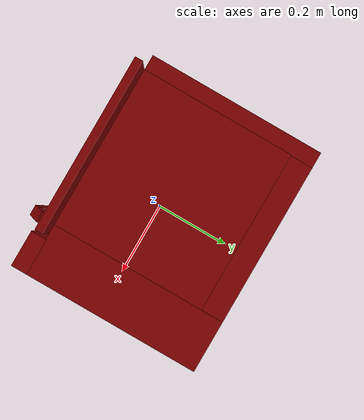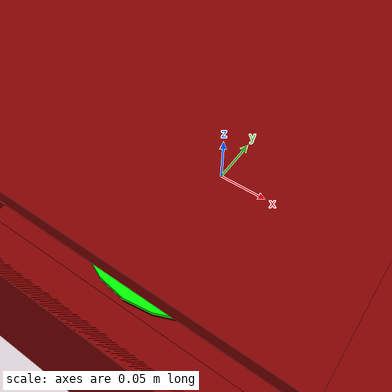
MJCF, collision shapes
<?xml version='1.0' encoding='UTF-8'?>
<mujoco model="model">
  <option timestep="0.002" gravity="0.0 0.0 -9.81"/>
  <compiler angle="radian"/>
  <asset>
    <mesh file="visuals/door.obj" name="door_vis"/>
    <mesh file="visuals/door_Clear.obj" name="door_Clear_vis"/>
    <mesh file="visuals/Body001.obj" name="Body001_vis"/>
    <mesh file="visuals/Disc001.obj" name="Disc001_vis"/>
    <texture file="visuals/T_BC001.png" name="Body001_material" type="2d"/>
    <material name="Body001_material" rgba="1 1 1 1.0" texture="Body001_material" shininess="0.4472135901451111" specular="0.5"/>
    <texture file="visuals/T_BC001.png" name="door_material" type="2d"/>
    <material name="door_material" rgba="1 1 1 1.0" texture="door_material" shininess="0.4472135901451111" specular="0.5"/>
    <material name="door_Clear_material" rgba="0.016620054841041565 0.016620054841041565 0.016620054841041565 0.8999999761581421" shininess="0.5" specular="0.3103448502657381"/>
    <texture file="visuals/T_BC001.png" name="Disc001_material" type="2d"/>
    <material name="Disc001_material" rgba="1 1 1 1.0" texture="Disc001_material" shininess="0.4472135901451111" specular="0.3103448502657381"/>
  </asset>
  <default>
    <default class="visual">
      <geom conaffinity="0" contype="0" group="1" type="mesh"/>
    </default>
    <default class="collision">
      <geom group="0" rgba="0.5 0 0 0.5"/>
    </default>
    <default class="spawn">
      <geom group="0" rgba="1 1 1 0.5" contype="0" conaffinity="0"/>
      <site group="0" rgba="1 1 1 0.5"/>
    </default>
    <default class="region">
      <geom group="1" conaffinity="0" contype="0" rgba="0 1 0 0"/>
    </default>
  </default>
  <worldbody>
    <body>
      <body name="object">
        <geom class="collision" type="box" pos="0.27996048 -0.23649887 -0.10212125" size="0.012545344419777393 0.0007347729406319559 0.00881138350814581" quat="1.0 0.0 0.0 0.0" name="stop_button" rgba="0.0 0.5 0 0.5"/>
        <geom class="collision" type="box" pos="0.22650762 -0.23649887 -0.10212125" size="0.012719687074422836 0.0007347734645009041 0.008811390027403831" quat="1.0 0.0 0.0 0.0" name="start_button" rgba="0.0 0.5 0 0.5"/>
        <geom class="collision" type="cylinder" pos="-0.04535701 0.02121897 -0.12542872" size="0.14345215260982513 0.003064013086259365" quat="1.0 0.0 0.0 0.0" name="tray" rgba="0 1 0 0.5"/>
        <geom mesh="Body001_vis" type="mesh" solimp="0.998 0.998 0.001" solref="0.001 1" friction="0.95 0.3 0.1" class="visual" material="Body001_material"/>
        <geom class="collision" type="box" pos="-0.27882862 0.03831745 0.00594076" size="0.020639784634113312 0.23016217350959778 0.15897443890571594" quat="1.0 0.0 0.0 0.0"/>
        <geom class="collision" type="box" pos="0.23153952 0.03831742 0.00594076" size="0.06792837381362915 0.2301621437072754 0.15897352993488312" quat="1.0 0.0 0.0 0.0"/>
        <geom class="collision" type="box" pos="-0.04815775 0.23901834 0.00594076" size="0.2123088538646698 0.029461197555065155 0.15897439420223236" quat="1.0 0.0 0.0 0.0"/>
        <geom class="collision" type="box" pos="-0.04815775 0.00912221 0.15744472" size="0.21231380105018616 0.20111820101737976 0.007470653858035803" quat="1.0 0.0 0.0 0.0"/>
        <geom class="collision" type="box" pos="-0.04815775 0.00912222 -0.14371936" size="0.21231357753276825 0.20111790299415588 0.009314464405179024" quat="1.0 0.0 0.0 0.0"/>
        <geom class="collision" type="box" pos="0.25188279 -0.21067425 0.00594071" size="0.04758565127849579 0.021016890183091164 0.15897449851036072" quat="1.0 0.0 0.0 0.0"/>
        <geom class="collision" type="cylinder" pos="-0.20576261 -0.15213001 -0.15921202" size="0.011163556016981602 0.005703367758542299" quat="1.0 0.0 0.0 0.0"/>
        <geom class="collision" type="cylinder" pos="-0.20576261 0.20260500 -0.15921202" size="0.011163556016981602 0.005703367758542299" quat="1.0 0.0 0.0 0.0"/>
        <geom class="collision" type="cylinder" pos="0.18034597 -0.15213001 -0.15921202" size="0.011163556016981602 0.005703367758542299" quat="1.0 0.0 0.0 0.0"/>
        <geom class="collision" type="cylinder" pos="0.18034597 0.20260500 -0.15921202" size="0.011163556016981602 0.005703367758542299" quat="1.0 0.0 0.0 0.0"/>
        <body name="door">
          <joint axis="0.0 0.0 1.0" pos="-0.27971351 -0.20872845 0.00594063" limited="true" name="microjoint" range="-1.5707963267948966 0.0" type="hinge" damping="1" frictionloss="1" armature=".01" stiffness="0.05"/>
          <geom mesh="door_vis" type="mesh" solimp="0.998 0.998 0.001" solref="0.001 1" friction="0.95 0.3 0.1" class="visual" material="door_material"/>
          <geom class="collision" type="box" pos="-0.03913759 -0.21612915 0.00589889" size="0.23685599863529205 0.010577213950455189 0.15901631116867065" quat="1.0 0.0 0.0 0.0"/>
          <geom class="collision" type="box" pos="0.16812241 -0.24648511 0.11071157" size="0.008749110624194145 0.014426779933273792 0.033219289034605026" quat="0.6828148365020752 -0.183749720454216 0.1837497055530548 0.6828147768974304"/>
          <geom class="collision" type="box" pos="0.16812241 -0.24606524 -0.09345727" size="0.00874911155551672 0.014426779933273792 0.033219289034605026" quat="0.6828147768974304 0.1837497353553772 0.18374976515769958 -0.6828147768974304"/>
          <geom class="collision" type="box" pos="0.16812241 -0.26088323 0.00863316" size="0.014426780864596367 0.00874911155551672 0.06571493297815323" quat="1.0 0.0 0.0 0.0" name="door_handle_main"/>
          <geom class="collision" type="box" pos="-0.04720452 -0.21881851 0.00779453" size="0.1515043079853058 0.0031866692006587982 0.12056651711463928" quat="1.0 0.0 0.0 0.0"/>
          <geom class="collision" type="box" pos="-0.03913759 -0.22301883 0.00589889" size="0.23685599863529205 0.0036875284276902676 0.15901631116867065" quat="1.0 0.0 0.0 0.0" name="door_main"/>
          <body name="door_Clear">
            <geom mesh="door_Clear_vis" type="mesh" solimp="0.998 0.998 0.001" solref="0.001 1" friction="0.95 0.3 0.1" class="visual" material="door_Clear_material"/>
            <geom class="collision" type="box" pos="-0.04720452 -0.21881851 0.00779453" size="0.1515043079853058 0.0031866692006587982 0.12056651711463928" quat="1.0 0.0 0.0 0.0"/>
          </body>
        </body>
        <body name="Disc001">
          <joint axis="0.0 0.0 1.0" pos="-0.04535701 0.02121896 -0.11235851" limited="false" name="Disc001_joint" range="0 360" type="hinge" damping="1" frictionloss="1" armature=".01" stiffness="0.05"/>
          <geom mesh="Disc001_vis" type="mesh" solimp="0.998 0.998 0.001" solref="0.001 1" friction="0.95 0.3 0.1" class="visual" material="Disc001_material"/>
          <geom class="collision" type="cylinder" pos="-0.04535701 0.02121897 -0.13097841" size="0.14345219731330872 0.00122024433221668" quat="1.0 0.0 0.0 0.0"/>
        </body>
        <geom class="region" name="reg_int" type="box" pos="-0.04711456500000001 0.007903010000000002 0.010253930000000001" size="0.20496523500000002 0.19199977000000001 0.13361858000000001"/>
        <geom class="region" name="reg_main" type="box" pos="-9.999999994736442e-09 0.017537090000000005 0.0" size="0.30046843 0.25194247000000003 0.1659152"/>
      <geom class="region" name="reg_tray" type="cylinder" pos="-0.04535701 0.02121897 0.01075390154312969" size="0.14345215260982513 0.13211860845687032"/></body>
    </body>
  </worldbody>
  <actuator>
    <motor name="microjoint_actuator" joint="microjoint" gear="10"/>
    <motor name="Disc001_joint_actuator" joint="Disc001_joint" gear="10"/>
  </actuator>
</mujoco>
